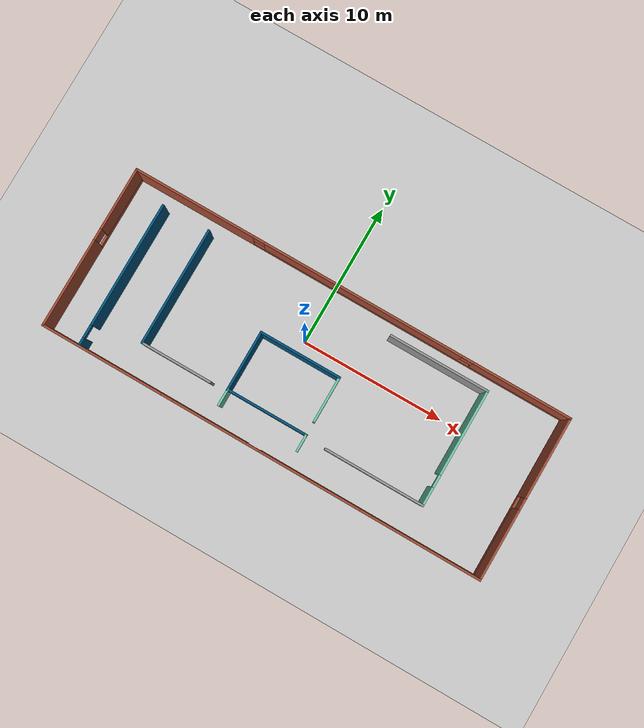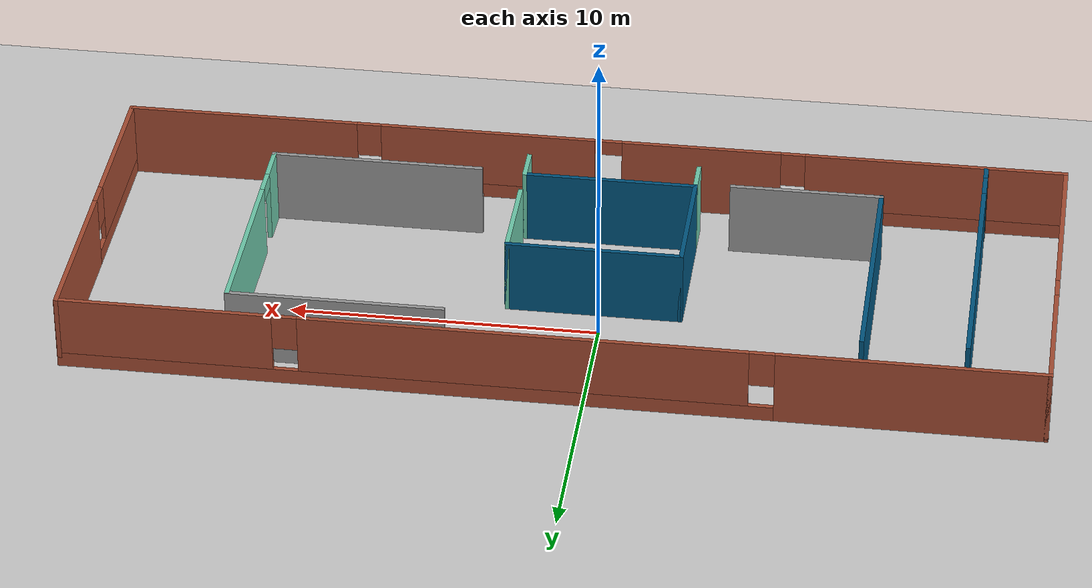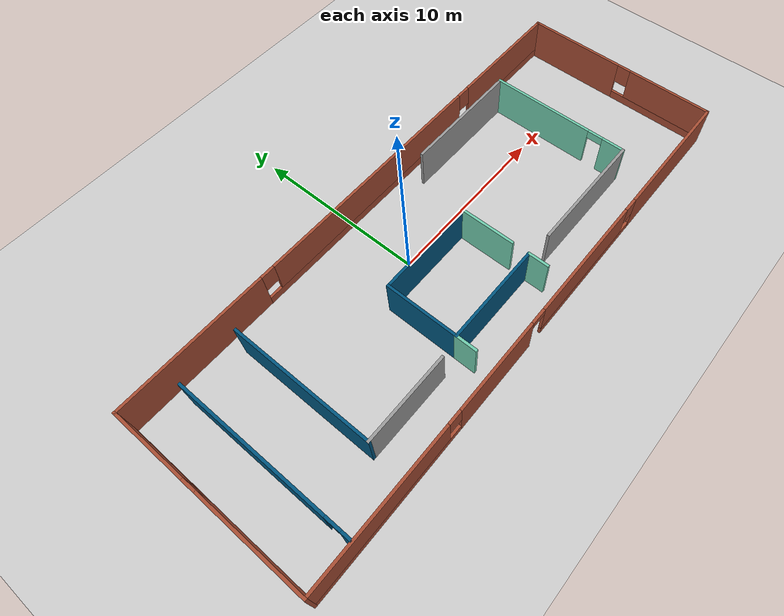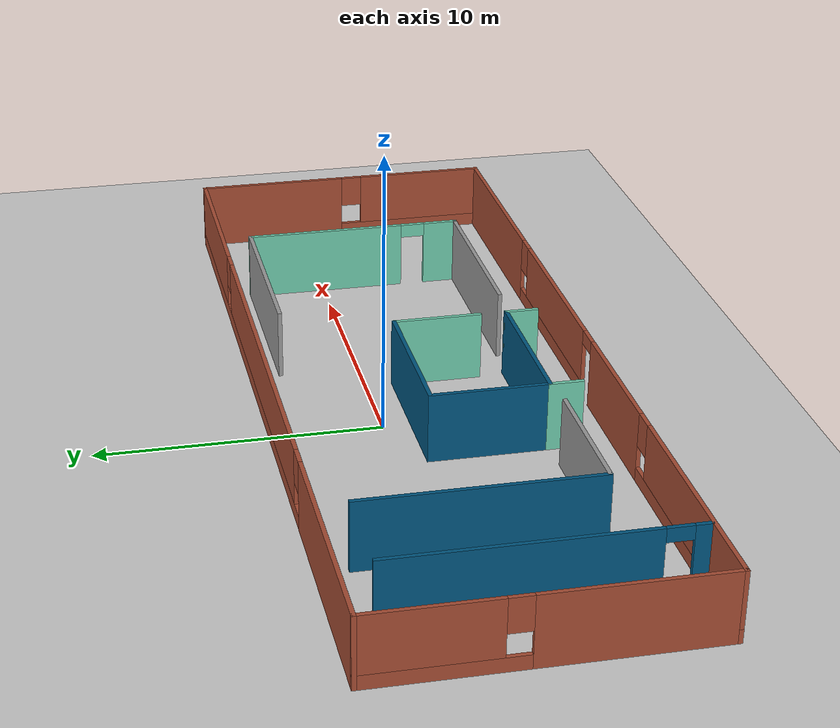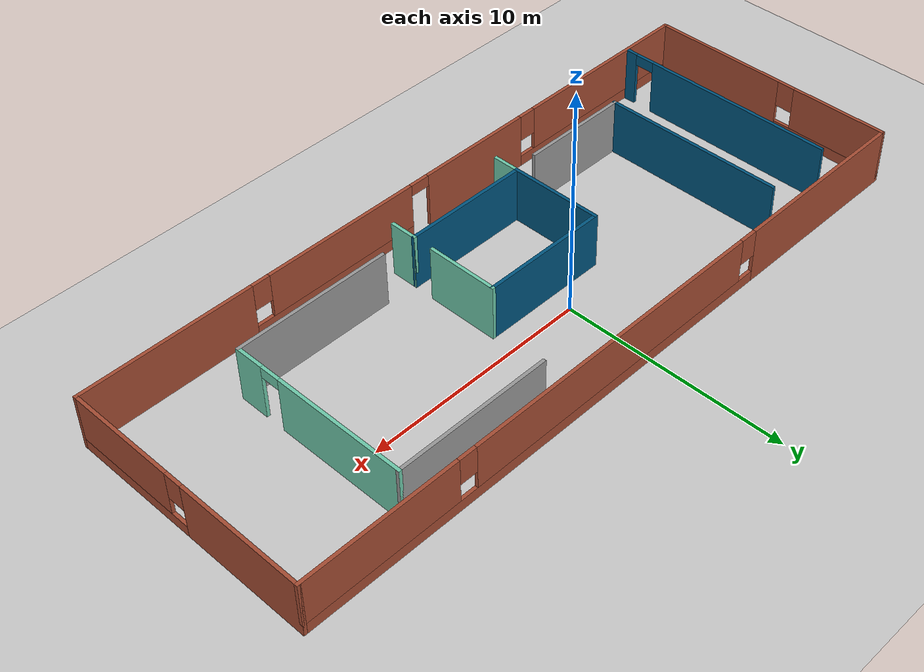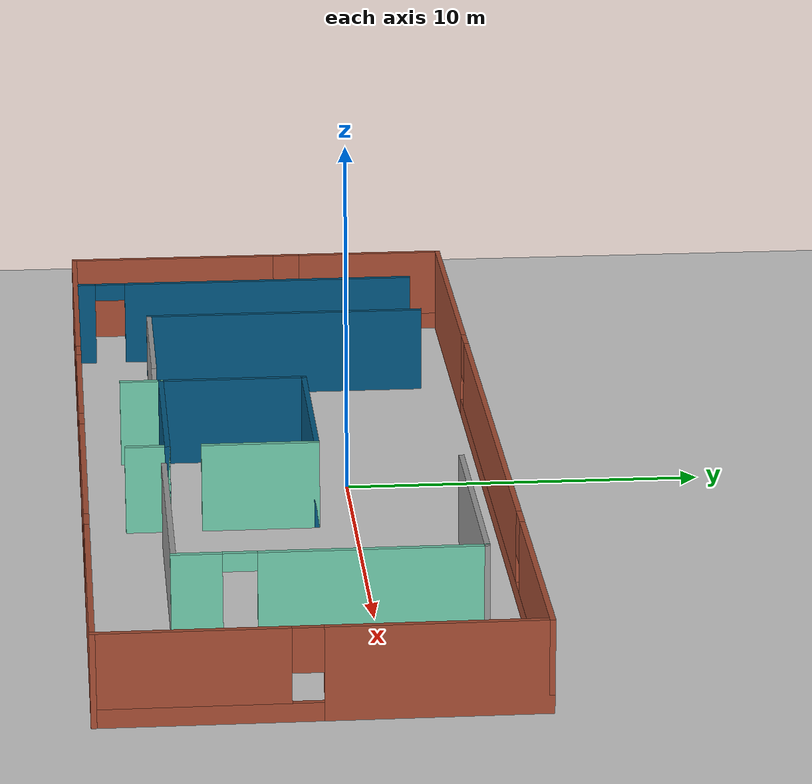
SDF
<sdf version="1.6">
 <world name="default">
  <model name="ground_plane">
   <static>1</static>
   <link name="link">
    <collision name="collision">
     <geometry><plane><normal>0 0 1</normal><size>100 100</size></plane></geometry>
     <surface>
      <contact><collide_bitmask>65535</collide_bitmask></contact>
      <friction><ode><mu>100</mu><mu2>50</mu2></ode></friction>
     </surface>
    </collision>
    <visual name="visual">
     <cast_shadows>0</cast_shadows>
     <geometry><plane><normal>0 0 1</normal><size>100 100</size></plane></geometry>
     <material>
      <script><uri>file://media/materials/scripts/gazebo.material</uri><name>Gazebo/Grey</name></script>
     </material>
    </visual>
   </link>
  </model>
  <model name="building">
   <pose>1.10006 -1.77566 0 0 -0 0</pose>
   <link name="Wall_11">
    <pose>0 5.675 0 0 -0 0</pose>
    <visual name="Wall_11_Visual_0">
     <pose>-11.3538 0 1.25 0 -0 0</pose>
     <geometry><box><size>8.54246 0.15 2.5</size></box></geometry>
     <material>
      <script><uri>file://media/materials/scripts/gazebo.material</uri><name>Gazebo/Bricks</name></script>
      <ambient>1 1 1 1</ambient>
     </material>
     <meta><layer>0</layer></meta>
    </visual>
    <collision name="Wall_11_Collision_0">
     <geometry><box><size>8.54246 0.15 2.5</size></box></geometry>
     <pose>-11.3538 0 1.25 0 -0 0</pose>
    </collision>
    <visual name="Wall_11_Visual_1">
     <pose>4.27123 0 0.25 0 -0 0</pose>
     <geometry><box><size>22.7075 0.15 0.5</size></box></geometry>
     <material>
      <script><uri>file://media/materials/scripts/gazebo.material</uri><name>Gazebo/Bricks</name></script>
      <ambient>1 1 1 1</ambient>
     </material>
     <meta><layer>0</layer></meta>
    </visual>
    <collision name="Wall_11_Collision_1">
     <geometry><box><size>22.7075 0.15 0.5</size></box></geometry>
     <pose>4.27123 0 0.25 0 -0 0</pose>
    </collision>
    <visual name="Wall_11_Visual_2">
     <pose>0.803208 0 1.5 0 -0 0</pose>
     <geometry><box><size>14.1715 0.15 2</size></box></geometry>
     <material>
      <script><uri>file://media/materials/scripts/gazebo.material</uri><name>Gazebo/Bricks</name></script>
      <ambient>1 1 1 1</ambient>
     </material>
     <meta><layer>0</layer></meta>
    </visual>
    <collision name="Wall_11_Collision_2">
     <geometry><box><size>14.1715 0.15 2</size></box></geometry>
     <pose>0.803208 0 1.5 0 -0 0</pose>
    </collision>
    <visual name="Wall_11_Visual_3">
     <pose>12.157 0 1.5 0 -0 0</pose>
     <geometry><box><size>6.93605 0.15 2</size></box></geometry>
     <material>
      <script><uri>file://media/materials/scripts/gazebo.material</uri><name>Gazebo/Bricks</name></script>
      <ambient>1 1 1 1</ambient>
     </material>
     <meta><layer>0</layer></meta>
    </visual>
    <collision name="Wall_11_Collision_3">
     <geometry><box><size>6.93605 0.15 2</size></box></geometry>
     <pose>12.157 0 1.5 0 -0 0</pose>
    </collision>
    <visual name="Wall_11_Visual_4">
     <pose>-6.68254 0 1.9 0 -0 0</pose>
     <geometry><box><size>0.8 0.15 1.2</size></box></geometry>
     <material>
      <script><uri>file://media/materials/scripts/gazebo.material</uri><name>Gazebo/Bricks</name></script>
      <ambient>1 1 1 1</ambient>
     </material>
     <meta><layer>0</layer></meta>
    </visual>
    <collision name="Wall_11_Collision_4">
     <geometry><box><size>0.8 0.15 1.2</size></box></geometry>
     <pose>-6.68254 0 1.9 0 -0 0</pose>
    </collision>
    <visual name="Wall_11_Visual_5">
     <pose>8.28895 0 1.9 0 -0 0</pose>
     <geometry><box><size>0.8 0.15 1.2</size></box></geometry>
     <material>
      <script><uri>file://media/materials/scripts/gazebo.material</uri><name>Gazebo/Bricks</name></script>
      <ambient>1 1 1 1</ambient>
     </material>
     <meta><layer>0</layer></meta>
    </visual>
    <collision name="Wall_11_Collision_5">
     <geometry><box><size>0.8 0.15 1.2</size></box></geometry>
     <pose>8.28895 0 1.9 0 -0 0</pose>
    </collision>
   </link>
   <link name="Wall_12">
    <pose>15.55 0 0 0 0 -1.5708</pose>
    <visual name="Wall_12_Visual_0">
     <pose>-2.88672 0 1.25 0 -0 0</pose>
     <geometry><box><size>5.72656 0.15 2.5</size></box></geometry>
     <material>
      <script><uri>file://media/materials/scripts/gazebo.material</uri><name>Gazebo/Bricks</name></script>
      <ambient>1 1 1 1</ambient>
     </material>
     <meta><layer>0</layer></meta>
    </visual>
    <collision name="Wall_12_Collision_0">
     <geometry><box><size>5.72656 0.15 2.5</size></box></geometry>
     <pose>-2.88672 0 1.25 0 -0 0</pose>
    </collision>
    <visual name="Wall_12_Visual_1">
     <pose>2.86328 0 0.25 0 -0 0</pose>
     <geometry><box><size>5.77344 0.15 0.5</size></box></geometry>
     <material>
      <script><uri>file://media/materials/scripts/gazebo.material</uri><name>Gazebo/Bricks</name></script>
      <ambient>1 1 1 1</ambient>
     </material>
     <meta><layer>0</layer></meta>
    </visual>
    <collision name="Wall_12_Collision_1">
     <geometry><box><size>5.77344 0.15 0.5</size></box></geometry>
     <pose>2.86328 0 0.25 0 -0 0</pose>
    </collision>
    <visual name="Wall_12_Visual_2">
     <pose>3.26328 0 1.5 0 -0 0</pose>
     <geometry><box><size>4.97344 0.15 2</size></box></geometry>
     <material>
      <script><uri>file://media/materials/scripts/gazebo.material</uri><name>Gazebo/Bricks</name></script>
      <ambient>1 1 1 1</ambient>
     </material>
     <meta><layer>0</layer></meta>
    </visual>
    <collision name="Wall_12_Collision_2">
     <geometry><box><size>4.97344 0.15 2</size></box></geometry>
     <pose>3.26328 0 1.5 0 -0 0</pose>
    </collision>
    <visual name="Wall_12_Visual_3">
     <pose>0.376562 0 1.9 0 -0 0</pose>
     <geometry><box><size>0.8 0.15 1.2</size></box></geometry>
     <material>
      <script><uri>file://media/materials/scripts/gazebo.material</uri><name>Gazebo/Bricks</name></script>
      <ambient>1 1 1 1</ambient>
     </material>
     <meta><layer>0</layer></meta>
    </visual>
    <collision name="Wall_12_Collision_3">
     <geometry><box><size>0.8 0.15 1.2</size></box></geometry>
     <pose>0.376562 0 1.9 0 -0 0</pose>
    </collision>
   </link>
   <link name="Wall_13">
    <pose>0 -5.675 0 0 -0 3.14159</pose>
    <visual name="Wall_13_Visual_0">
     <pose>-11.7722 0 1.25 0 -0 0</pose>
     <geometry><box><size>7.70561 0.15 2.5</size></box></geometry>
     <material>
      <script><uri>file://media/materials/scripts/gazebo.material</uri><name>Gazebo/Bricks</name></script>
      <ambient>1 1 1 1</ambient>
     </material>
     <meta><layer>0</layer></meta>
    </visual>
    <collision name="Wall_13_Collision_0">
     <geometry><box><size>7.70561 0.15 2.5</size></box></geometry>
     <pose>-11.7722 0 1.25 0 -0 0</pose>
    </collision>
    <visual name="Wall_13_Visual_1">
     <pose>3.57682 0 1.25 0 -0 0</pose>
     <geometry><box><size>5.27152 0.15 2.5</size></box></geometry>
     <material>
      <script><uri>file://media/materials/scripts/gazebo.material</uri><name>Gazebo/Bricks</name></script>
      <ambient>1 1 1 1</ambient>
     </material>
     <meta><layer>0</layer></meta>
    </visual>
    <collision name="Wall_13_Collision_1">
     <geometry><box><size>5.27152 0.15 2.5</size></box></geometry>
     <pose>3.57682 0 1.25 0 -0 0</pose>
    </collision>
    <visual name="Wall_13_Visual_2">
     <pose>-3.93917 0 0.25 0 -0 0</pose>
     <geometry><box><size>7.96045 0.15 0.5</size></box></geometry>
     <material>
      <script><uri>file://media/materials/scripts/gazebo.material</uri><name>Gazebo/Bricks</name></script>
      <ambient>1 1 1 1</ambient>
     </material>
     <meta><layer>0</layer></meta>
    </visual>
    <collision name="Wall_13_Collision_2">
     <geometry><box><size>7.96045 0.15 0.5</size></box></geometry>
     <pose>-3.93917 0 0.25 0 -0 0</pose>
    </collision>
    <visual name="Wall_13_Visual_3">
     <pose>10.9188 0 0.25 0 -0 0</pose>
     <geometry><box><size>9.41242 0.15 0.5</size></box></geometry>
     <material>
      <script><uri>file://media/materials/scripts/gazebo.material</uri><name>Gazebo/Bricks</name></script>
      <ambient>1 1 1 1</ambient>
     </material>
     <meta><layer>0</layer></meta>
    </visual>
    <collision name="Wall_13_Collision_3">
     <geometry><box><size>9.41242 0.15 0.5</size></box></geometry>
     <pose>10.9188 0 0.25 0 -0 0</pose>
    </collision>
    <visual name="Wall_13_Visual_4">
     <pose>-3.53917 0 1.5 0 -0 0</pose>
     <geometry><box><size>7.16045 0.15 2</size></box></geometry>
     <material>
      <script><uri>file://media/materials/scripts/gazebo.material</uri><name>Gazebo/Bricks</name></script>
      <ambient>1 1 1 1</ambient>
     </material>
     <meta><layer>0</layer></meta>
    </visual>
    <collision name="Wall_13_Collision_4">
     <geometry><box><size>7.16045 0.15 2</size></box></geometry>
     <pose>-3.53917 0 1.5 0 -0 0</pose>
    </collision>
    <visual name="Wall_13_Visual_5">
     <pose>-3.53917 0 1.5 0 -0 0</pose>
     <geometry><box><size>7.16045 0.15 2</size></box></geometry>
     <material>
      <script><uri>file://media/materials/scripts/gazebo.material</uri><name>Gazebo/Bricks</name></script>
      <ambient>1 1 1 1</ambient>
     </material>
     <meta><layer>0</layer></meta>
    </visual>
    <collision name="Wall_13_Collision_5">
     <geometry><box><size>7.16045 0.15 2</size></box></geometry>
     <pose>-3.53917 0 1.5 0 -0 0</pose>
    </collision>
    <visual name="Wall_13_Visual_6">
     <pose>11.3188 0 1.5 0 -0 0</pose>
     <geometry><box><size>8.61242 0.15 2</size></box></geometry>
     <material>
      <script><uri>file://media/materials/scripts/gazebo.material</uri><name>Gazebo/Bricks</name></script>
      <ambient>1 1 1 1</ambient>
     </material>
     <meta><layer>0</layer></meta>
    </visual>
    <collision name="Wall_13_Collision_6">
     <geometry><box><size>8.61242 0.15 2</size></box></geometry>
     <pose>11.3188 0 1.5 0 -0 0</pose>
    </collision>
    <visual name="Wall_13_Visual_7">
     <pose>-7.51939 0 1.9 0 -0 0</pose>
     <geometry><box><size>0.8 0.15 1.2</size></box></geometry>
     <material>
      <script><uri>file://media/materials/scripts/gazebo.material</uri><name>Gazebo/Bricks</name></script>
      <ambient>1 1 1 1</ambient>
     </material>
     <meta><layer>0</layer></meta>
    </visual>
    <collision name="Wall_13_Collision_7">
     <geometry><box><size>0.8 0.15 1.2</size></box></geometry>
     <pose>-7.51939 0 1.9 0 -0 0</pose>
    </collision>
    <visual name="Wall_13_Visual_8">
     <pose>6.61258 0 1.9 0 -0 0</pose>
     <geometry><box><size>0.8 0.15 1.2</size></box></geometry>
     <material>
      <script><uri>file://media/materials/scripts/gazebo.material</uri><name>Gazebo/Bricks</name></script>
      <ambient>1 1 1 1</ambient>
     </material>
     <meta><layer>0</layer></meta>
    </visual>
    <collision name="Wall_13_Collision_8">
     <geometry><box><size>0.8 0.15 1.2</size></box></geometry>
     <pose>6.61258 0 1.9 0 -0 0</pose>
    </collision>
    <visual name="Wall_13_Visual_9">
     <pose>0.491056 0 2.25 0 -0 0</pose>
     <geometry><box><size>0.9 0.15 0.5</size></box></geometry>
     <material>
      <script><uri>file://media/materials/scripts/gazebo.material</uri><name>Gazebo/Bricks</name></script>
      <ambient>1 1 1 1</ambient>
     </material>
     <meta><layer>0</layer></meta>
    </visual>
    <collision name="Wall_13_Collision_9">
     <geometry><box><size>0.9 0.15 0.5</size></box></geometry>
     <pose>0.491056 0 2.25 0 -0 0</pose>
    </collision>
    <visual name="Wall_13_Visual_10">
     <pose>0.491056 0 2.25 0 -0 0</pose>
     <geometry><box><size>0.9 0.15 0.5</size></box></geometry>
     <material>
      <script><uri>file://media/materials/scripts/gazebo.material</uri><name>Gazebo/Bricks</name></script>
      <ambient>1 1 1 1</ambient>
     </material>
     <meta><layer>0</layer></meta>
    </visual>
    <collision name="Wall_13_Collision_10">
     <geometry><box><size>0.9 0.15 0.5</size></box></geometry>
     <pose>0.491056 0 2.25 0 -0 0</pose>
    </collision>
   </link>
   <link name="Wall_14">
    <pose>-15.55 0 0 0 -0 1.5708</pose>
    <visual name="Wall_14_Visual_0">
     <pose>-2.61615 0 1.25 0 -0 0</pose>
     <geometry><box><size>6.2677 0.15 2.5</size></box></geometry>
     <material>
      <script><uri>file://media/materials/scripts/gazebo.material</uri><name>Gazebo/Bricks</name></script>
      <ambient>1 1 1 1</ambient>
     </material>
     <meta><layer>0</layer></meta>
    </visual>
    <collision name="Wall_14_Collision_0">
     <geometry><box><size>6.2677 0.15 2.5</size></box></geometry>
     <pose>-2.61615 0 1.25 0 -0 0</pose>
    </collision>
    <visual name="Wall_14_Visual_1">
     <pose>3.13385 0 0.25 0 -0 0</pose>
     <geometry><box><size>5.2323 0.15 0.5</size></box></geometry>
     <material>
      <script><uri>file://media/materials/scripts/gazebo.material</uri><name>Gazebo/Bricks</name></script>
      <ambient>1 1 1 1</ambient>
     </material>
     <meta><layer>0</layer></meta>
    </visual>
    <collision name="Wall_14_Collision_1">
     <geometry><box><size>5.2323 0.15 0.5</size></box></geometry>
     <pose>3.13385 0 0.25 0 -0 0</pose>
    </collision>
    <visual name="Wall_14_Visual_2">
     <pose>3.53385 0 1.5 0 -0 0</pose>
     <geometry><box><size>4.4323 0.15 2</size></box></geometry>
     <material>
      <script><uri>file://media/materials/scripts/gazebo.material</uri><name>Gazebo/Bricks</name></script>
      <ambient>1 1 1 1</ambient>
     </material>
     <meta><layer>0</layer></meta>
    </visual>
    <collision name="Wall_14_Collision_2">
     <geometry><box><size>4.4323 0.15 2</size></box></geometry>
     <pose>3.53385 0 1.5 0 -0 0</pose>
    </collision>
    <visual name="Wall_14_Visual_3">
     <pose>0.917703 0 1.9 0 -0 0</pose>
     <geometry><box><size>0.8 0.15 1.2</size></box></geometry>
     <material>
      <script><uri>file://media/materials/scripts/gazebo.material</uri><name>Gazebo/Bricks</name></script>
      <ambient>1 1 1 1</ambient>
     </material>
     <meta><layer>0</layer></meta>
    </visual>
    <collision name="Wall_14_Collision_3">
     <geometry><box><size>0.8 0.15 1.2</size></box></geometry>
     <pose>0.917703 0 1.9 0 -0 0</pose>
    </collision>
   </link>
   <link name="Wall_16">
    <pose>-12.9615 -0.529344 0 0 0 -1.5708</pose>
    <visual name="Wall_16_Visual_0">
     <pose>-0.738849 0 1.25 0 -0 0</pose>
     <geometry><box><size>8.7723 0.15 2.5</size></box></geometry>
     <material>
      <script><uri>file://media/materials/scripts/gazebo.material</uri><name>Gazebo/Grey</name></script>
      <ambient>0 0.333333 0.498039 1</ambient>
     </material>
     <meta><layer>0</layer></meta>
    </visual>
    <collision name="Wall_16_Collision_0">
     <geometry><box><size>8.7723 0.15 2.5</size></box></geometry>
     <pose>-0.738849 0 1.25 0 -0 0</pose>
    </collision>
    <visual name="Wall_16_Visual_1">
     <pose>4.83615 0 1.25 0 -0 0</pose>
     <geometry><box><size>0.577698 0.15 2.5</size></box></geometry>
     <material>
      <script><uri>file://media/materials/scripts/gazebo.material</uri><name>Gazebo/Grey</name></script>
      <ambient>0 0.333333 0.498039 1</ambient>
     </material>
     <meta><layer>0</layer></meta>
    </visual>
    <collision name="Wall_16_Collision_1">
     <geometry><box><size>0.577698 0.15 2.5</size></box></geometry>
     <pose>4.83615 0 1.25 0 -0 0</pose>
    </collision>
    <visual name="Wall_16_Visual_2">
     <pose>4.0973 0 2.25 0 -0 0</pose>
     <geometry><box><size>0.9 0.15 0.5</size></box></geometry>
     <material>
      <script><uri>file://media/materials/scripts/gazebo.material</uri><name>Gazebo/Grey</name></script>
      <ambient>0 0.333333 0.498039 1</ambient>
     </material>
     <meta><layer>0</layer></meta>
    </visual>
    <collision name="Wall_16_Collision_2">
     <geometry><box><size>0.9 0.15 0.5</size></box></geometry>
     <pose>4.0973 0 2.25 0 -0 0</pose>
    </collision>
   </link>
   <link name="Wall_18">
    <collision name="Wall_18_Collision">
     <geometry><box><size>1.25 0.15 2.5</size></box></geometry>
     <pose>0 0 1.25 0 -0 0</pose>
    </collision>
    <visual name="Wall_18_Visual">
     <pose>0 0 1.25 0 -0 0</pose>
     <geometry><box><size>1.25 0.15 2.5</size></box></geometry>
     <material>
      <script><uri>file://media/materials/scripts/gazebo.material</uri><name>Gazebo/Grey</name></script>
      <ambient>0.435294 0.796078 0.67451 1</ambient>
     </material>
     <meta><layer>0</layer></meta>
    </visual>
    <pose>-3.62178 -3.91924 0 0 -0 1.5708</pose>
   </link>
   <link name="Wall_19">
    <collision name="Wall_19_Collision">
     <geometry><box><size>5.75 0.15 2.5</size></box></geometry>
     <pose>0 0 1.25 0 -0 0</pose>
    </collision>
    <visual name="Wall_19_Visual">
     <pose>0 0 1.25 0 -0 0</pose>
     <geometry><box><size>5.75 0.15 2.5</size></box></geometry>
     <material>
      <script><uri>file://media/materials/scripts/gazebo.material</uri><name>Gazebo/Grey</name></script>
      <ambient>0 0.333333 0.498039 1</ambient>
     </material>
     <meta><layer>0</layer></meta>
    </visual>
    <pose>-0.821778 -3.36924 0 0 -0 0</pose>
   </link>
   <link name="Wall_20">
    <collision name="Wall_20_Collision">
     <geometry><box><size>1.25 0.15 2.5</size></box></geometry>
     <pose>0 0 1.25 0 -0 0</pose>
    </collision>
    <visual name="Wall_20_Visual">
     <pose>0 0 1.25 0 -0 0</pose>
     <geometry><box><size>1.25 0.15 2.5</size></box></geometry>
     <material>
      <script><uri>file://media/materials/scripts/gazebo.material</uri><name>Gazebo/Grey</name></script>
      <ambient>0.435294 0.796078 0.67451 1</ambient>
     </material>
     <meta><layer>0</layer></meta>
    </visual>
    <pose>1.97822 -3.91924 0 0 0 -1.5708</pose>
   </link>
   <link name="Wall_22">
    <collision name="Wall_22_Collision">
     <geometry><box><size>8.25 0.15 2.5</size></box></geometry>
     <pose>0 0 1.25 0 -0 0</pose>
    </collision>
    <visual name="Wall_22_Visual">
     <pose>0 0 1.25 0 -0 0</pose>
     <geometry><box><size>8.25 0.15 2.5</size></box></geometry>
     <material>
      <script><uri>file://media/materials/scripts/gazebo.material</uri><name>Gazebo/Grey</name></script>
      <ambient>0 0.333333 0.498039 1</ambient>
     </material>
     <meta><layer>0</layer></meta>
    </visual>
    <pose>-9.67334 0.523126 0 0 0 -1.5708</pose>
   </link>
   <link name="Wall_23">
    <collision name="Wall_23_Collision">
     <geometry><box><size>5 0.15 2.5</size></box></geometry>
     <pose>0 0 1.25 0 -0 0</pose>
    </collision>
    <visual name="Wall_23_Visual">
     <pose>0 0 1.25 0 -0 0</pose>
     <geometry><box><size>5 0.15 2.5</size></box></geometry>
     <material>
      <script><uri>file://media/materials/scripts/gazebo.material</uri><name>Gazebo/Grey</name></script>
      <ambient>0 0 0 1</ambient>
     </material>
     <meta><layer>0</layer></meta>
    </visual>
    <pose>-7.24834 -3.52687 0 0 -0 0</pose>
   </link>
   <link name="Wall_26">
    <collision name="Wall_26_Collision">
     <geometry><box><size>7 0.15 2.5</size></box></geometry>
     <pose>0 0 1.25 0 -0 0</pose>
    </collision>
    <visual name="Wall_26_Visual">
     <pose>0 0 1.25 0 -0 0</pose>
     <geometry><box><size>7 0.15 2.5</size></box></geometry>
     <material>
      <script><uri>file://media/materials/scripts/gazebo.material</uri><name>Gazebo/Grey</name></script>
      <ambient>0 0 0 1</ambient>
     </material>
     <meta><layer>0</layer></meta>
    </visual>
    <pose>6.8867 -3.50728 0 0 -0 0</pose>
   </link>
   <link name="Wall_27">
    <pose>10.3117 0.542717 0 0 -0 1.5708</pose>
    <visual name="Wall_27_Visual_0">
     <pose>-3.45549 0 1.25 0 -0 0</pose>
     <geometry><box><size>1.33903 0.15 2.5</size></box></geometry>
     <material>
      <script><uri>file://media/materials/scripts/gazebo.material</uri><name>Gazebo/Grey</name></script>
      <ambient>0.435294 0.796078 0.67451 1</ambient>
     </material>
     <meta><layer>0</layer></meta>
    </visual>
    <collision name="Wall_27_Collision_0">
     <geometry><box><size>1.33903 0.15 2.5</size></box></geometry>
     <pose>-3.45549 0 1.25 0 -0 0</pose>
    </collision>
    <visual name="Wall_27_Visual_1">
     <pose>1.11951 0 1.25 0 -0 0</pose>
     <geometry><box><size>6.01097 0.15 2.5</size></box></geometry>
     <material>
      <script><uri>file://media/materials/scripts/gazebo.material</uri><name>Gazebo/Grey</name></script>
      <ambient>0.435294 0.796078 0.67451 1</ambient>
     </material>
     <meta><layer>0</layer></meta>
    </visual>
    <collision name="Wall_27_Collision_1">
     <geometry><box><size>6.01097 0.15 2.5</size></box></geometry>
     <pose>1.11951 0 1.25 0 -0 0</pose>
    </collision>
    <visual name="Wall_27_Visual_2">
     <pose>-2.33597 0 2.25 0 -0 0</pose>
     <geometry><box><size>0.9 0.15 0.5</size></box></geometry>
     <material>
      <script><uri>file://media/materials/scripts/gazebo.material</uri><name>Gazebo/Grey</name></script>
      <ambient>0.435294 0.796078 0.67451 1</ambient>
     </material>
     <meta><layer>0</layer></meta>
    </visual>
    <collision name="Wall_27_Collision_2">
     <geometry><box><size>0.9 0.15 0.5</size></box></geometry>
     <pose>-2.33597 0 2.25 0 -0 0</pose>
    </collision>
   </link>
   <link name="Wall_29">
    <collision name="Wall_29_Collision">
     <geometry><box><size>4.25 0.15 2.5</size></box></geometry>
     <pose>0 0 1.25 0 -0 0</pose>
    </collision>
    <visual name="Wall_29_Visual">
     <pose>0 0 1.25 0 -0 0</pose>
     <geometry><box><size>4.25 0.15 2.5</size></box></geometry>
     <material>
      <script><uri>file://media/materials/scripts/gazebo.material</uri><name>Gazebo/Grey</name></script>
      <ambient>0 0.333333 0.498039 1</ambient>
     </material>
     <meta><layer>0</layer></meta>
    </visual>
    <pose>-3.62178 -1.31924 0 0 -0 1.5708</pose>
   </link>
   <link name="Wall_30">
    <collision name="Wall_30_Collision">
     <geometry><box><size>5.75 0.15 2.5</size></box></geometry>
     <pose>0 0 1.25 0 -0 0</pose>
    </collision>
    <visual name="Wall_30_Visual">
     <pose>0 0 1.25 0 -0 0</pose>
     <geometry><box><size>5.75 0.15 2.5</size></box></geometry>
     <material>
      <script><uri>file://media/materials/scripts/gazebo.material</uri><name>Gazebo/Grey</name></script>
      <ambient>0 0.333333 0.498039 1</ambient>
     </material>
     <meta><layer>0</layer></meta>
    </visual>
    <pose>-0.821778 0.730764 0 0 -0 0</pose>
   </link>
   <link name="Wall_31">
    <collision name="Wall_31_Collision">
     <geometry><box><size>3.25 0.15 2.5</size></box></geometry>
     <pose>0 0 1.25 0 -0 0</pose>
    </collision>
    <visual name="Wall_31_Visual">
     <pose>0 0 1.25 0 -0 0</pose>
     <geometry><box><size>3.25 0.15 2.5</size></box></geometry>
     <material>
      <script><uri>file://media/materials/scripts/gazebo.material</uri><name>Gazebo/Grey</name></script>
      <ambient>0.435294 0.796078 0.67451 1</ambient>
     </material>
     <meta><layer>0</layer></meta>
    </visual>
    <pose>1.97822 -0.819236 0 0 0 -1.5708</pose>
   </link>
   <link name="Wall_33">
    <collision name="Wall_33_Collision">
     <geometry><box><size>7 0.15 2.5</size></box></geometry>
     <pose>0 0 1.25 0 -0 0</pose>
    </collision>
    <visual name="Wall_33_Visual">
     <pose>0 0 1.25 0 -0 0</pose>
     <geometry><box><size>7 0.15 2.5</size></box></geometry>
     <material>
      <script><uri>file://media/materials/scripts/gazebo.material</uri><name>Gazebo/Grey</name></script>
      <ambient>0 0 0 1</ambient>
     </material>
     <meta><layer>0</layer></meta>
    </visual>
    <pose>6.8867 4.59272 0 0 -0 3.14159</pose>
   </link>
   <static>1</static>
  </model>
 </world>
</sdf>
